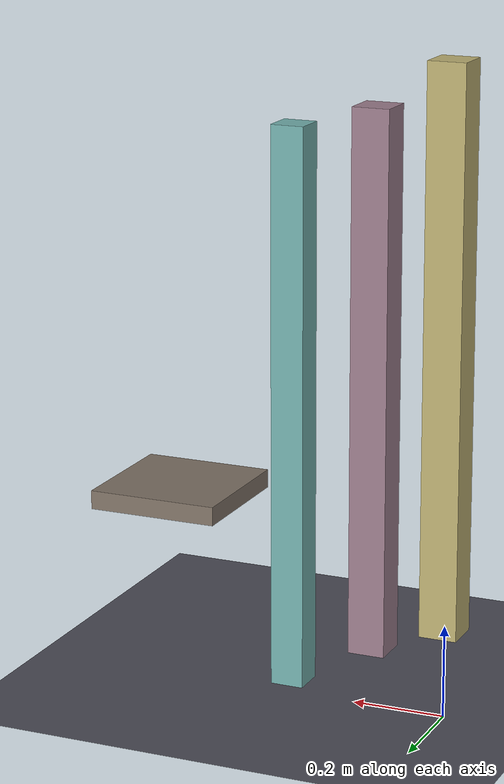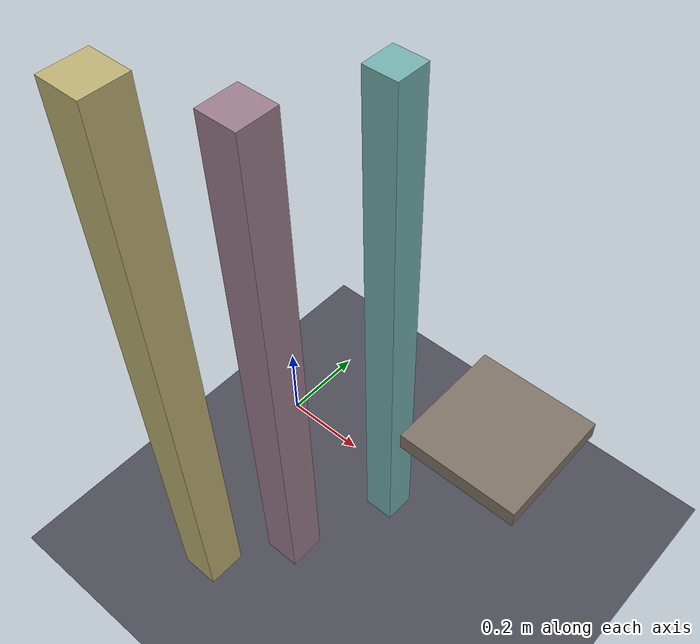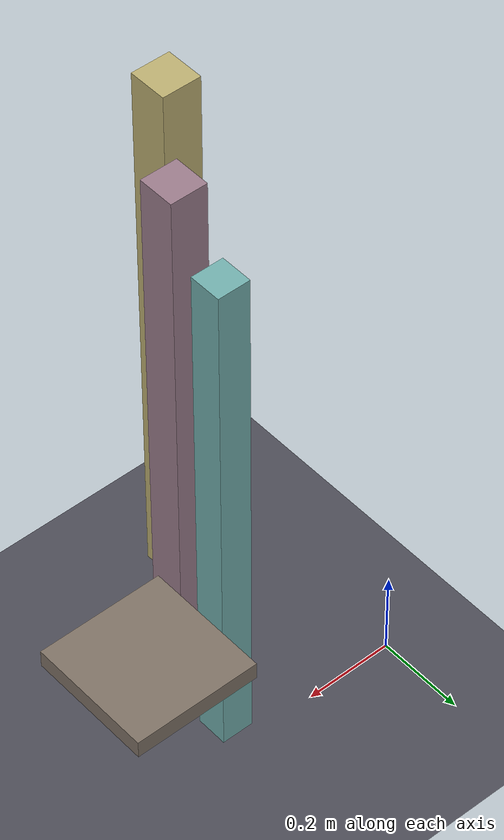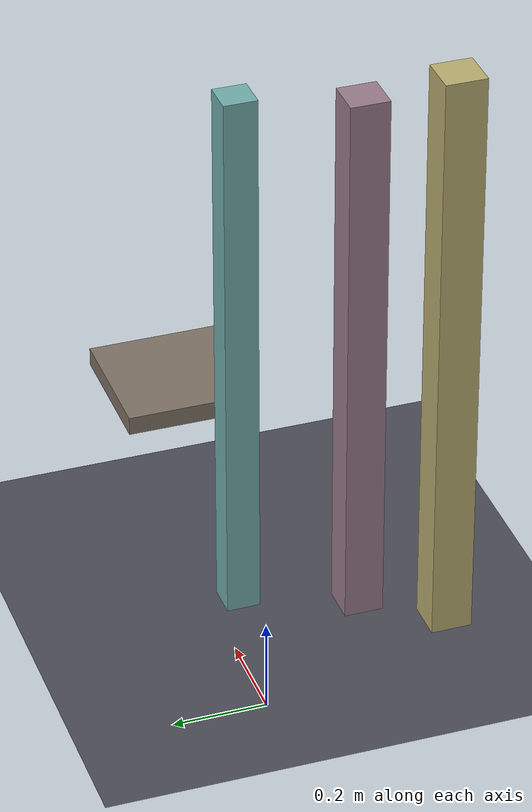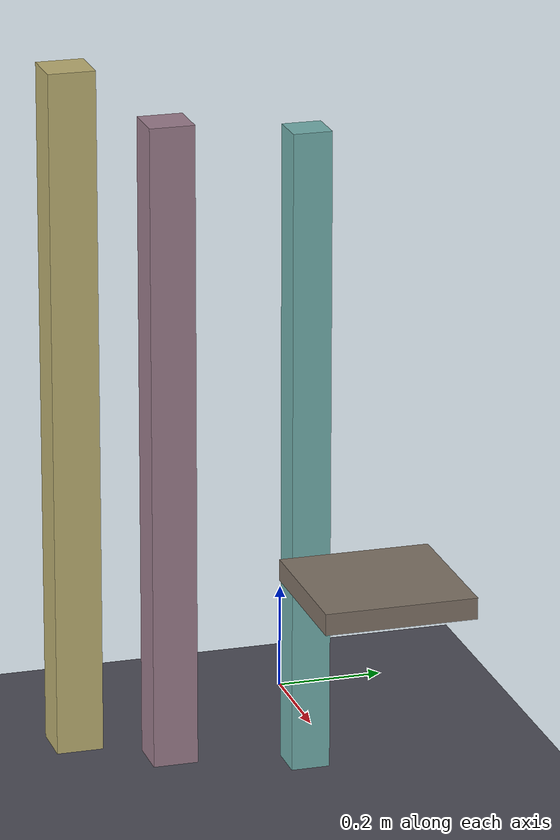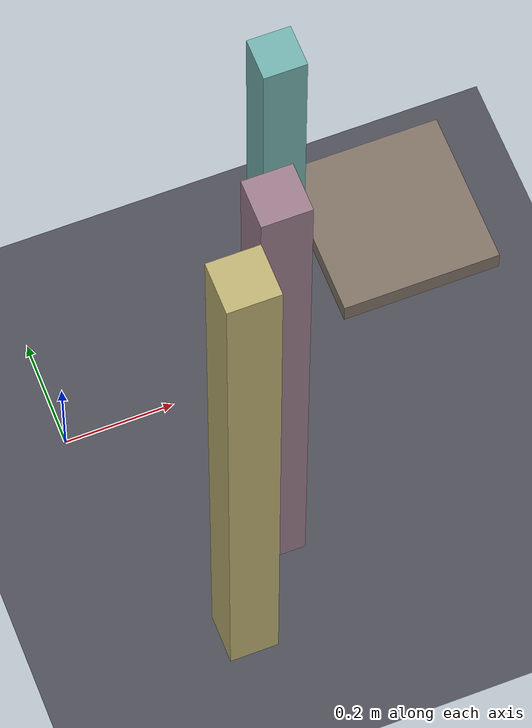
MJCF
<mujoco model="pillar_avoid_1">
  <compiler angle="radian" autolimits="true" boundmass="0" balanceinertia="true"/>
  <option impratio="10" gravity="0 0 -9.8" integrator="implicitfast" cone="elliptic" jacobian="sparse" noslip_iterations="4">
    <flag multiccd="enable" contact="enable" warmstart="enable"/>
  </option>
  <size njmax="6000" nconmax="6000"/>
  <visual><global offwidth="1280" offheight="720"/><map znear="0.001"/>
    <headlight ambient="0.45 0.45 0.45" diffuse="0.6 0.6 0.6"/></visual>
  <worldbody>
    <light pos="0.4 0.4 3" dir="0 0 -1" diffuse="0.7 0.7 0.7"/>
    <!-- Obstacle-avoidance variant 1: 3 tall PHYSICAL pillars; placements blocking >10%
         of exo-camera sightlines to the arm excluded (training view preserved). -->
    <body name="pillars" pos="0 0 0"><geom name="floor" type="plane" size="5 5 0.1" pos="0 0 0" rgba="0.30 0.30 0.34 1" contype="8" conaffinity="15"/><geom name="obj_pad" type="box" pos="0.60 0 0.42" size="0.14 0.14 0.02" rgba="0.5 0.45 0.4 1" contype="8" conaffinity="15"/><geom name="pillar_2" type="box" pos="0.275 -0.295 0.609" size="0.042 0.042 0.609" contype="8" conaffinity="15" rgba="0.61 0.49 0.55 1"/><geom name="pillar_3" type="box" pos="0.366 -0.062 0.606" size="0.036 0.036 0.606" contype="8" conaffinity="15" rgba="0.45 0.69 0.68 1"/><geom name="pillar_4" type="box" pos="0.163 -0.448 0.650" size="0.044 0.044 0.650" contype="8" conaffinity="15" rgba="0.74 0.69 0.45 1"/></body>
  </worldbody>
</mujoco>
